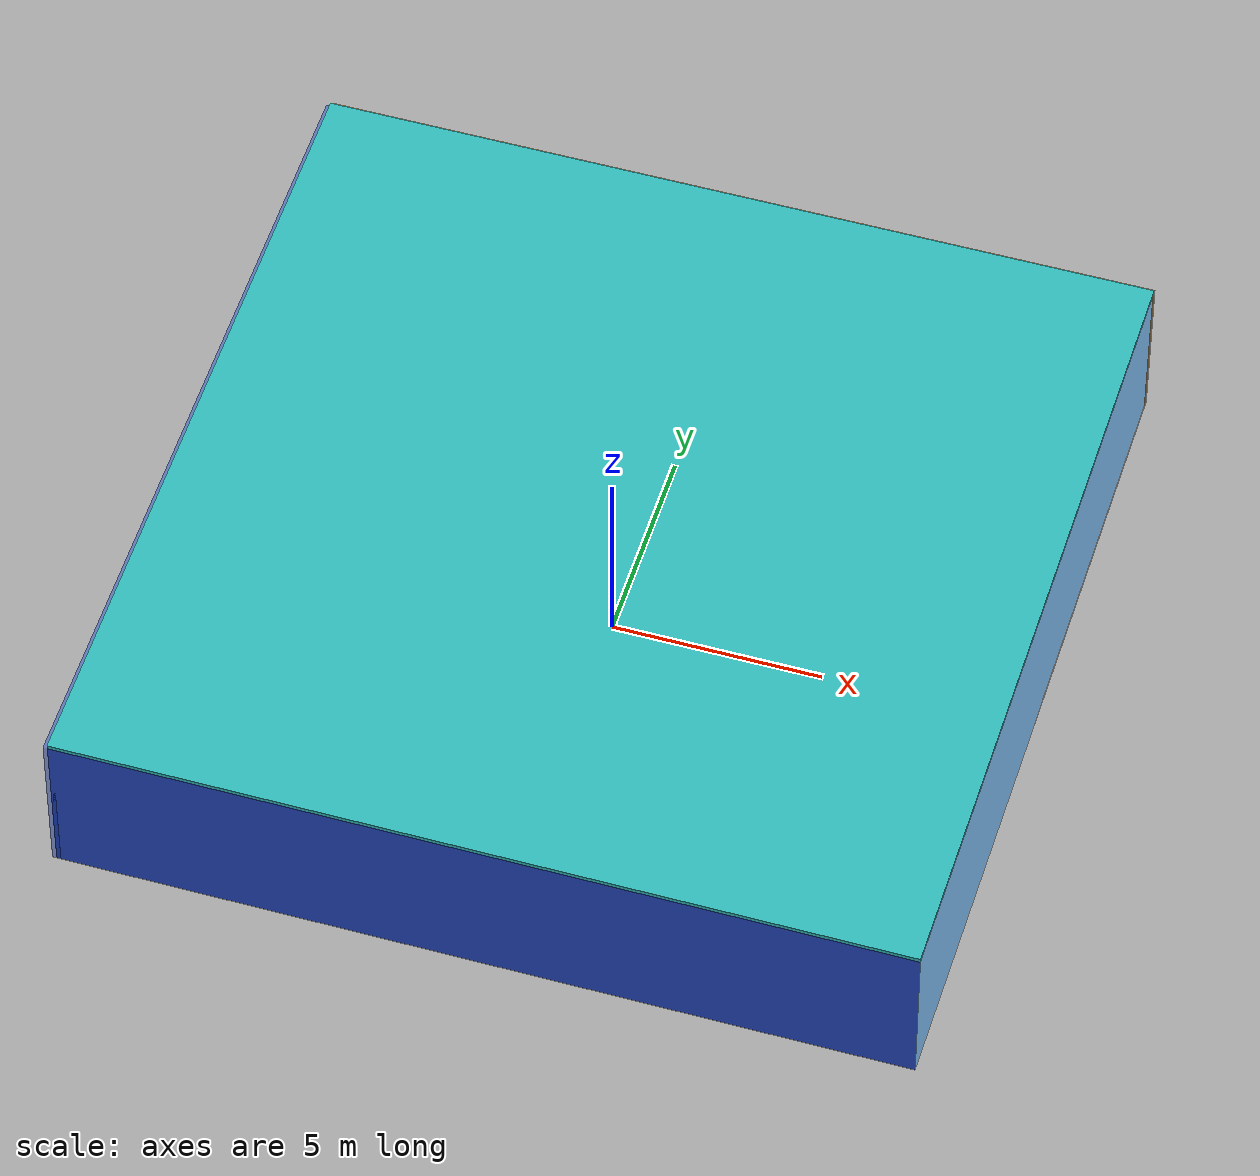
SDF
<sdf version="1.4">
 <world name="default">
  <physics type="ode">
   <max_step_size>0.001</max_step_size>
   <real_time_factor>1</real_time_factor>
   <real_time_update_rate>1000</real_time_update_rate>
   <gravity>0 0 -9.8</gravity>
  </physics>
  <scene><ambient>0.4 0.4 0.4 1</ambient><background>0.7 0.7 0.7 1</background><shadows>1</shadows></scene>
  <model name="Surrounding">
   <static>1</static>
   <link name="Ceiling">
    <collision name="Ceiling_Collision"><geometry><box><size>20 20 0.1</size></box></geometry></collision>
    <visual name="Ceiling_Visual">
     <geometry><box><size>20 20 0.1</size></box></geometry>
     <material>
      <script><uri>file://media/materials/scripts/gazebo.material</uri><name>Gazebo/TurquoiseGlow</name></script>
     </material>
    </visual>
    <pose>0 0 4.05 0 0 0</pose>
   </link>
   <link name="Wall_South">
    <collision name="Wall_South_Collision">
     <geometry><box><size>20 0 4</size></box></geometry>
     <pose>0 0 2 0 -0 0</pose>
    </collision>
    <visual name="Wall_South_Visual">
     <pose>0 0 2 0 -0 0</pose>
     <geometry><box><size>20 0 4</size></box></geometry>
     <material>
      <script><uri>file://media/materials/scripts/gazebo.material</uri><name>Gazebo/Blue</name></script>
     </material>
    </visual>
    <velocity_decay><linear>0</linear><angular>0</angular></velocity_decay>
    <pose>0 -10 0 0 -0 0</pose>
   </link>
   <link name="Wall_East">
    <collision name="Wall_21_Collision">
     <geometry><box><size>20 0 4</size></box></geometry>
     <pose>0 0 2 0 -0 0</pose>
    </collision>
    <visual name="Wall_21_Visual">
     <pose>0 0 2 0 -0 0</pose>
     <geometry><box><size>20 0 4</size></box></geometry>
     <material>
      <script><uri>file://media/materials/scripts/gazebo.material</uri><name>Gazebo/SkyBlue</name></script>
     </material>
    </visual>
    <velocity_decay><linear>0</linear><angular>0</angular></velocity_decay>
    <pose>10 0 0 0 -0 1.5708</pose>
   </link>
   <link name="Wall_North">
    <collision name="Wall_22_Collision">
     <geometry><box><size>20 0.2 4</size></box></geometry>
     <pose>0 0 2 0 -0 0</pose>
    </collision>
    <visual name="Wall_22_Visual">
     <pose>0 0 2 0 -0 0</pose>
     <geometry><box><size>20 0.2 4</size></box></geometry>
     <material>
      <script>
       <uri>file://media/materials/scripts/gazebo.material</uri>
       <name>Gazebo/OrangeTransparent</name>
      </script>
     </material>
    </visual>
    <velocity_decay><linear>0</linear><angular>0</angular></velocity_decay>
    <pose>0 10 0 0 -0 0</pose>
   </link>
   <link name="Wall_West">
    <collision name="Wall_23_Collision">
     <geometry><box><size>20 0.2 4</size></box></geometry>
     <pose>0 0 2 0 -0 0</pose>
    </collision>
    <visual name="Wall_23_Visual">
     <pose>0 0 2 0 -0 0</pose>
     <geometry><box><size>20 0.2 4</size></box></geometry>
     <material>
      <script><uri>file://media/materials/scripts/gazebo.material</uri><name>Gazebo/BlueTransparent</name></script>
     </material>
    </visual>
    <velocity_decay><linear>0</linear><angular>0</angular></velocity_decay>
    <pose>-10 0 0 0 0 -1.5708</pose>
   </link>
   <link name="Ground_link">
    <collision name="collision">
     <pose>0 0 .05 0 -0 0</pose>
     <geometry><box><size>20 20 0.1</size></box></geometry>
    </collision>
    <visual name="visual">
     <pose>0 0 .05 0 -0 0</pose>
     <geometry><box><size>20 20 0.1</size></box></geometry>
     <material>
      <script><uri>file://media/materials/scripts/gazebo.material</uri><name>Gazebo/White</name></script>
     </material>
    </visual>
   </link>
   <static>1</static>
  </model>
  <spherical_coordinates>
   <surface_model>EARTH_WGS84</surface_model>
   <latitude_deg>0</latitude_deg>
   <longitude_deg>0</longitude_deg>
   <elevation>0</elevation>
   <heading_deg>0</heading_deg>
  </spherical_coordinates>
  <light name="lightball_0" type="diffuse">
   <diffuse>0.8 0.8 0.8 1</diffuse>
   <specular>0.2 0.2 0.2 1</specular>
   <attenuation>
    <range>100</range>
    <constant>0.7</constant>
    <linear>0.01</linear>
    <quadratic>0.001</quadratic>
   </attenuation>
   <direction>-0.5 0.1 -0.9</direction>
   <pose>1.63125905879 -2.76063734608 0.900872058603 0 0 0</pose>
  </light>
  <light name="lightball_1" type="diffuse">
   <diffuse>0.8 0.8 0.8 1</diffuse>
   <specular>0.2 0.2 0.2 1</specular>
   <attenuation>
    <range>100</range>
    <constant>0.7</constant>
    <linear>0.01</linear>
    <quadratic>0.001</quadratic>
   </attenuation>
   <direction>-0.5 0.1 -0.9</direction>
   <pose>9.71135197725 -4.35023099986 2.37719605017 0 0 0</pose>
  </light>
  <light name="lightball_2" type="diffuse">
   <diffuse>0.8 0.8 0.8 1</diffuse>
   <specular>0.2 0.2 0.2 1</specular>
   <attenuation>
    <range>100</range>
    <constant>0.7</constant>
    <linear>0.01</linear>
    <quadratic>0.001</quadratic>
   </attenuation>
   <direction>-0.5 0.1 -0.9</direction>
   <pose>6.62854748654 -3.86736837054 3.31577321843 0 0 0</pose>
  </light>
  <light name="lightball_3" type="diffuse">
   <diffuse>0.8 0.8 0.8 1</diffuse>
   <specular>0.2 0.2 0.2 1</specular>
   <attenuation>
    <range>100</range>
    <constant>0.7</constant>
    <linear>0.01</linear>
    <quadratic>0.001</quadratic>
   </attenuation>
   <direction>-0.5 0.1 -0.9</direction>
   <pose>7.96625724525 -5.67131221905 3.5969095033 0 0 0</pose>
  </light>
  <light name="lightball_4" type="diffuse">
   <diffuse>0.8 0.8 0.8 1</diffuse>
   <specular>0.2 0.2 0.2 1</specular>
   <attenuation>
    <range>100</range>
    <constant>0.7</constant>
    <linear>0.01</linear>
    <quadratic>0.001</quadratic>
   </attenuation>
   <direction>-0.5 0.1 -0.9</direction>
   <pose>7.92313653211 8.16463630446 3.3085880852 0 0 0</pose>
  </light>
  <light name="lightball_5" type="diffuse">
   <diffuse>0.8 0.8 0.8 1</diffuse>
   <specular>0.2 0.2 0.2 1</specular>
   <attenuation>
    <range>100</range>
    <constant>0.7</constant>
    <linear>0.01</linear>
    <quadratic>0.001</quadratic>
   </attenuation>
   <direction>-0.5 0.1 -0.9</direction>
   <pose>-5.81972577577 -7.19852351503 1.65893446319 0 0 0</pose>
  </light>
  <include><uri>model://cabinet</uri><pose>-1.93207216629 4.15653760535 0 0 0 2.71893947926</pose></include>
  <include><uri>model://table</uri><pose>0.846720851416 -1.30951060741 0 0 0 0.583775073601</pose></include>
  <include>
   <uri>model://robocup_3Dsim_goal</uri>
   <pose>7.52455395136 -8.17256187207 0 0 0 3.05132583195</pose>
  </include>
  <include>
   <uri>model://construction_cone</uri>
   <pose>8.18088733827 -1.81374966039 0 0 0 2.09429583151</pose>
  </include>
  <include>
   <uri>model://textured_shapes</uri>
   <pose>7.13229341655 2.28959725386 0 0 0 2.87923618994</pose>
  </include>
 </world>
</sdf>

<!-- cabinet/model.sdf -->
<sdf version="1.5">
  <model name="cabinet">
    <static>true</static>
    <link name="cabinet_bottom_plate">
      <inertial>
        <pose>0 0 -1 0 0 0</pose>
        <inertia>
          <ixx>2.050000</ixx>
          <ixy>0</ixy>
          <ixz>0</ixz>
          <iyy>2.050000</iyy>
          <iyz>0</iyz>
          <izz>2.050000</izz>
        </inertia>
        <mass>25.000000</mass>
      </inertial>
      <collision name="cabinet_bottom_plate_geom">
        <pose>0 0 0.010000 0 0 0</pose>
        <geometry>
          <box>
            <size>0.450000 0.450000 0.020000</size>
          </box>
        </geometry>
      </collision>
      <visual name="cabinet_bottom_plate_geom_visual">
        <pose>0 0 0.010000 0 0 0</pose>
        <geometry>
          <box>
            <size>0.450000 0.450000 0.020000</size>
          </box>
        </geometry>
        <material>
          <script>
            <uri>model://media/materials/scripts/gazebo.material</uri>
            <name>Gazebo/Wood</name>
          </script>
        </material>
      </visual>
      <collision name="cabinet_bottom_plate_geom_cabinet_back_plate">
        <pose>0.235000 0 0.510000 0 0 0</pose>
        <geometry>
          <box>
            <size>0.020000 0.450000 1.020000</size>
          </box>
        </geometry>
      </collision>
      <visual name="cabinet_bottom_plate_geom_cabinet_back_plate_visual">
        <pose>0.235000 0 0.510000 0 0 0</pose>
        <geometry>
          <box>
            <size>0.020000 0.450000 1.020000</size>
          </box>
        </geometry>
        <material>
          <script>
            <uri>model://media/materials/scripts/gazebo.material</uri>
            <name>Gazebo/Wood</name>
          </script>
        </material>
      </visual>
      <collision name="cabinet_bottom_plate_geom_cabinet_left_plate">
        <pose>0 0.235000 0.510000 0 0 0</pose>
        <geometry>
          <box>
            <size>0.450000 0.020000 1.020000</size>
          </box>
        </geometry>
      </collision>
      <visual name="cabinet_bottom_plate_geom_cabinet_left_plate_visual">
        <pose>0 0.235000 0.510000 0 0 0</pose>
        <geometry>
          <box>
            <size>0.450000 0.020000 1.020000</size>
          </box>
        </geometry>
        <material>
          <script>
            <uri>model://media/materials/scripts/gazebo.material</uri>
            <name>Gazebo/Wood</name>
          </script>
        </material>
      </visual>
      <collision name="cabinet_bottom_plate_geom_cabinet_middle_plate">
        <pose>0 0 0.510000 0 0 0</pose>
        <geometry>
          <box>
            <size>0.450000 0.450000 0.020000</size>
          </box>
        </geometry>
      </collision>
      <visual name="cabinet_bottom_plate_geom_cabinet_middle_plate_visual">
        <pose>0 0 0.510000 0 0 0</pose>
        <geometry>
          <box>
            <size>0.450000 0.450000 0.020000</size>
          </box>
        </geometry>
        <material>
          <script>
            <uri>model://media/materials/scripts/gazebo.material</uri>
            <name>Gazebo/Wood</name>
          </script>
        </material>
      </visual>
      <collision name="cabinet_bottom_plate_geom_cabinet_right_plate">
        <pose>0 -0.235000 0.510000 0 0 0</pose>
        <geometry>
          <box>
            <size>0.450000 0.020000 1.020000</size>
          </box>
        </geometry>
      </collision>
      <visual name="cabinet_bottom_plate_geom_cabinet_right_plate_visual">
        <pose>0 -0.235000 0.510000 0 0 0</pose>
        <geometry>
          <box>
            <size>0.450000 0.020000 1.020000</size>
          </box>
        </geometry>
        <material>
          <script>
            <uri>model://media/materials/scripts/gazebo.material</uri>
            <name>Gazebo/Wood</name>
          </script>
        </material>
      </visual>
      <collision name="cabinet_bottom_plate_geom_cabinet_top_plate">
        <pose>0 0 1.010000 0 0 0</pose>
        <geometry>
          <box>
            <size>0.450000 0.450000 0.020000</size>
          </box>
        </geometry>
      </collision>
      <visual name="cabinet_bottom_plate_geom_cabinet_top_plate_visual">
        <pose>0 0 1.010000 0 0 0</pose>
        <geometry>
          <box>
            <size>0.450000 0.450000 0.020000</size>
          </box>
        </geometry>
        <material>
          <script>
            <uri>model://media/materials/scripts/gazebo.material</uri>
            <name>Gazebo/Wood</name>
          </script>
        </material>
      </visual>
    </link>
  </model>
</sdf>

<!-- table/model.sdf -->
<sdf version="1.5">
  <model name="table">
    <static>true</static>
    <link name="link">
      <collision name="surface">
        <pose>0 0 1.0 0 0 0</pose>
        <geometry>
          <box>
            <size>1.5 0.8 0.03</size>
          </box>
        </geometry>
        <surface>
          <friction>
            <ode>
              <mu>0.6</mu>
              <mu2>0.6</mu2>
            </ode>
          </friction>
        </surface>
      </collision>
      <visual name="visual1">
        <pose>0 0 1.0 0 0 0</pose>
        <geometry>
          <box>
            <size>1.5 0.8 0.03</size>
          </box>
        </geometry>
        <material>
          <script>
            <uri>model://media/materials/scripts/gazebo.material</uri>
            <name>Gazebo/Wood</name>
          </script>
        </material>
      </visual>
      <collision name="front_left_leg">
        <pose>0.68 0.38 0.5 0 0 0</pose>
        <geometry>
          <cylinder>
            <radius>0.02</radius>
            <length>1.0</length>
          </cylinder>
        </geometry>
      </collision>
      <visual name="front_left_leg">
        <pose>0.68 0.38 0.5 0 0 0</pose>
        <geometry>
          <cylinder>
            <radius>0.02</radius>
            <length>1.0</length>
          </cylinder>
        </geometry>
        <material>
          <script>
            <uri>model://media/materials/scripts/gazebo.material</uri>
            <name>Gazebo/Grey</name>
          </script>
        </material>
      </visual>
      <collision name="front_right_leg">
        <pose>0.68 -0.38 0.5 0 0 0</pose>
        <geometry>
          <cylinder>
            <radius>0.02</radius>
            <length>1.0</length>
          </cylinder>
        </geometry>
      </collision>
      <visual name="front_right_leg">
        <pose>0.68 -0.38 0.5 0 0 0</pose>
        <geometry>
          <cylinder>
            <radius>0.02</radius>
            <length>1.0</length>
          </cylinder>
        </geometry>
        <material>
          <script>
            <uri>model://media/materials/scripts/gazebo.material</uri>
            <name>Gazebo/Grey</name>
          </script>
        </material>
      </visual>
      <collision name="back_right_leg">
        <pose>-0.68 -0.38 0.5 0 0 0</pose>
        <geometry>
          <cylinder>
            <radius>0.02</radius>
            <length>1.0</length>
          </cylinder>
        </geometry>
      </collision>
      <visual name="back_right_leg">
        <pose>-0.68 -0.38 0.5 0 0 0</pose>
        <geometry>
          <cylinder>
            <radius>0.02</radius>
            <length>1.0</length>
          </cylinder>
        </geometry>
        <material>
          <script>
            <uri>model://media/materials/scripts/gazebo.material</uri>
            <name>Gazebo/Grey</name>
          </script>
        </material>
      </visual>
      <collision name="back_left_leg">
        <pose>-0.68 0.38 0.5 0 0 0</pose>
        <geometry>
          <cylinder>
            <radius>0.02</radius>
            <length>1.0</length>
          </cylinder>
        </geometry>
      </collision>
      <visual name="back_left_leg">
        <pose>-0.68 0.38 0.5 0 0 0</pose>
        <geometry>
          <cylinder>
            <radius>0.02</radius>
            <length>1.0</length>
          </cylinder>
        </geometry>
        <material>
          <script>
            <uri>model://media/materials/scripts/gazebo.material</uri>
            <name>Gazebo/Grey</name>
          </script>
        </material>
      </visual>
    </link>
  </model>
</sdf>

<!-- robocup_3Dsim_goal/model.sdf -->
<sdf version="1.5">
  <model name="robocup_3d_goal">
    <static>true</static>
    <link name="left_post">
      <pose>0 1.05 0.45 0 0 0</pose>
      <collision name="collision">
        <geometry>
          <cylinder>
            <radius>0.05</radius>
            <length>0.9</length>
          </cylinder>
        </geometry>
      </collision>
      <visual name="visual">
        <geometry>
          <cylinder>
            <radius>0.05</radius>
            <length>0.9</length>
          </cylinder>
        </geometry>
        <material>
          <script>
            <uri>file://media/materials/scripts/gazebo.material</uri>
            <name>Gazebo/ZincYellow</name>
          </script>
        </material>
      </visual>
    </link>
    <link name="left_support_horiz_lower">
      <pose>0.30 1.05 0.01 0 0 0</pose>
      <collision name="collision">
        <geometry>
          <box>
            <size>0.50 0.02 0.02</size>
          </box>
        </geometry>
      </collision>
      <visual name="visual">
        <geometry>
          <box>
            <size>0.50 0.02 0.02</size>
          </box>
        </geometry>
        <material>
          <script>
            <uri>file://media/materials/scripts/gazebo.material</uri>
            <name>Gazebo/White</name>
          </script>
        </material>
      </visual>
    </link>
    <link name="left_support_horiz_upper">
      <pose>0.30 1.05 0.79 0 0 0</pose>
      <collision name="collision">
        <geometry>
          <box>
            <size>0.50 0.02 0.02</size>
          </box>
        </geometry>
      </collision>
      <visual name="visual">
        <geometry>
          <box>
            <size>0.50 0.02 0.02</size>
          </box>
        </geometry>
        <material>
          <script>
            <uri>file://media/materials/scripts/gazebo.material</uri>
            <name>Gazebo/White</name>
          </script>
        </material>
      </visual>
    </link>
    <link name="left_support_vertical">
      <pose>0.56 1.05 0.4 0 1.5708 0</pose>
      <collision name="collision">
        <geometry>
          <box>
            <size>0.80 0.02 0.02</size>
          </box>
        </geometry>
      </collision>
      <visual name="visual">
        <geometry>
          <box>
            <size>0.80 0.02 0.02</size>
          </box>
        </geometry>
        <material>
          <script>
            <uri>file://media/materials/scripts/gazebo.material</uri>
            <name>Gazebo/White</name>
          </script>
        </material>
      </visual>
    </link>
    <link name="right_support_horiz_lower">
      <pose>0.30 -1.05 0.01 0 0 0</pose>
      <collision name="collision">
        <geometry>
          <box>
            <size>0.50 0.02 0.02</size>
          </box>
        </geometry>
      </collision>
      <visual name="visual">
        <geometry>
          <box>
            <size>0.50 0.02 0.02</size>
          </box>
        </geometry>
        <material>
          <script>
            <uri>file://media/materials/scripts/gazebo.material</uri>
            <name>Gazebo/White</name>
          </script>
        </material>
      </visual>
    </link>
    <link name="right_support_horiz_upper">
      <pose>0.30 -1.05 0.79 0 0 0</pose>
      <collision name="collision">
        <geometry>
          <box>
            <size>0.50 0.02 0.02</size>
          </box>
        </geometry>
      </collision>
      <visual name="visual">
        <geometry>
          <box>
            <size>0.50 0.02 0.02</size>
          </box>
        </geometry>
        <material>
          <script>
            <uri>file://media/materials/scripts/gazebo.material</uri>
            <name>Gazebo/White</name>
          </script>
        </material>
      </visual>
    </link>
    <link name="right_support_vertical">
      <pose>0.56 -1.05 0.4 0 1.5708 0</pose>
      <collision name="collision">
        <geometry>
          <box>
            <size>0.80 0.02 0.02</size>
          </box>
        </geometry>
      </collision>
      <visual name="visual">
        <geometry>
          <box>
            <size>0.80 0.02 0.02</size>
          </box>
        </geometry>
        <material>
          <script>
            <uri>file://media/materials/scripts/gazebo.material</uri>
            <name>Gazebo/White</name>
          </script>
        </material>
      </visual>
    </link>
    <link name="center_support_horiz_lower">
      <pose>0.56 0 0.01 0 1.5708 0</pose>
      <collision name="collision">
        <geometry>
          <box>
            <size>0.02 2.08 0.02</size>
          </box>
        </geometry>
      </collision>
      <visual name="visual">
        <geometry>
          <box>
            <size>0.02 2.08 0.02</size>
          </box>
        </geometry>
        <material>
          <script>
            <uri>file://media/materials/scripts/gazebo.material</uri>
            <name>Gazebo/White</name>
          </script>
        </material>
      </visual>
    </link>
    <link name="center_support_horiz_upper">
      <pose>0.56 0 0.79 0 1.5708 0</pose>
      <collision name="collision">
        <geometry>
          <box>
            <size>0.02 2.08 0.02</size>
          </box>
        </geometry>
      </collision>
      <visual name="visual">
        <geometry>
          <box>
            <size>0.02 2.08 0.02</size>
          </box>
        </geometry>
        <material>
          <script>
            <uri>file://media/materials/scripts/gazebo.material</uri>
            <name>Gazebo/White</name>
          </script>
        </material>
      </visual>
    </link>
    <link name="right_post">
      <pose>0 -1.05 0.45 0 0 0</pose>
      <collision name="collision">
        <geometry>
          <cylinder>
            <radius>0.05</radius>
            <length>0.9</length>
          </cylinder>
        </geometry>
      </collision>
      <visual name="visual">
        <geometry>
          <cylinder>
            <radius>0.05</radius>
            <length>0.9</length>
          </cylinder>
        </geometry>
        <material>
          <script>
            <uri>file://media/materials/scripts/gazebo.material</uri>
            <name>Gazebo/ZincYellow</name>
          </script>
        </material>
      </visual>
    </link>
    <link name="crossbar">
      <pose>0 0 0.85 1.57 1.57 0</pose>
      <collision name="collision">
        <geometry>
          <cylinder>
            <radius>0.05</radius>
            <length>2.0</length>
          </cylinder>
        </geometry>
      </collision>
      <visual name="visual">
        <geometry>
          <cylinder>
            <radius>0.05</radius>
            <length>2.0</length>
          </cylinder>
        </geometry>
        <material>
          <script>
            <uri>file://media/materials/scripts/gazebo.material</uri>
            <name>Gazebo/ZincYellow</name>
          </script>
        </material>
      </visual>
    </link>
    <link name="center_net">
      <pose>0.56 0 0.40 0 0 0</pose>
      <collision name="collision">
        <geometry>
          <box>
            <size>0.01 2.1 0.80</size>
          </box>
        </geometry>
      </collision>
      <visual name="visual">
        <geometry>
          <box>
            <size>0.01 2.1 0.80</size>
          </box>
        </geometry>
        <material>
          <script>
            <uri>model://../model_source/models/robocup09_spl_field/materials/scripts/</uri>
            <uri>model://../model_source/models/robocup09_spl_field/materials/textures/</uri>
            <name>RoboCup/Net</name>
          </script>
        </material>
      </visual>
    </link>
    <link name="left_net">
      <pose>0.30 1.05 0.40 0 0 0</pose>
      <collision name="collision">
        <geometry>
          <box>
            <size>0.50 0.01 0.76</size>
          </box>
        </geometry>
      </collision>
      <visual name="visual">
        <geometry>
          <box>
            <size>0.50 0.01 0.76</size>
          </box>
        </geometry>
        <material>
          <script>
            <uri>model://../model_source/models/robocup09_spl_field/materials/scripts/</uri>
            <uri>model://../model_source/models/robocup09_spl_field/materials/textures/</uri>
            <name>RoboCup/Net</name>
          </script>
        </material>
      </visual>
    </link>
    <link name="right_net">
      <pose>0.30 -1.05 0.40 0 0 0</pose>
      <collision name="collision">
        <geometry>
          <box>
            <size>0.50 0.01 0.76</size>
          </box>
        </geometry>
      </collision>
      <visual name="visual">
        <geometry>
          <box>
            <size>0.50 0.01 0.76</size>
          </box>
        </geometry>
        <material>
          <script>
            <uri>model://../model_source/models/robocup09_spl_field/materials/scripts/</uri>
            <uri>model://../model_source/models/robocup09_spl_field/materials/textures/</uri>
            <name>RoboCup/Net</name>
          </script>
        </material>
      </visual>
    </link>
  </model>
</sdf>

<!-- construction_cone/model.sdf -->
<sdf version="1.5">
  <model name="Construction Cone">
    <link name="link">
      <collision name="collision">
        <geometry>
          <mesh>
            <scale>10 10 10</scale>
            <uri>file://isr-testbed/construction_cone/meshes/construction_cone.dae</uri>
          </mesh>
        </geometry>
      </collision>
      <visual name="visual">
        <geometry>
          <mesh>
            <scale>10 10 10</scale>
            <uri>file://isr-testbed/construction_cone/meshes/construction_cone.dae</uri>
          </mesh>
        </geometry>
      </visual>
    </link>
  </model>
</sdf>

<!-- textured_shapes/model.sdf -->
<sdf version="1.6">
  <model name="textured_shapes">
    <pose>0 0 0.5 0 0 0</pose>
    <link name="box">
      <pose>0 -1.5 0 0 0 0</pose>
      <collision name="collision">
        <geometry>
          <box>
            <size>1 1 1</size>
          </box>
        </geometry>
      </collision>
      <visual name="visual">
        <geometry>
          <box>
            <size>1 1 1</size>
          </box>
        </geometry>
        <material>
          <script>
            <uri>model://../model_source/models/textured_shapes/materials/scripts</uri>
            <uri>model://../model_source/models/textured_shapes/materials/textures</uri>
            <name>TexturedShape/Squares</name>
          </script>
        </material>
      </visual>
    </link>
    <link name="sphere">
      <collision name="collision">
        <geometry>
          <sphere>
            <radius>0.5</radius>
          </sphere>
        </geometry>
      </collision>
      <visual name="visual">
        <geometry>
          <sphere>
            <radius>0.5</radius>
          </sphere>
        </geometry>
        <material>
          <script>
            <uri>model://../model_source/models/textured_shapes/materials/scripts</uri>
            <uri>model://../model_source/models/textured_shapes/materials/textures</uri>
            <name>TexturedShape/Squares</name>
          </script>
        </material>
      </visual>
    </link>
    <link name="cylinder">
      <pose>0 1.5 0 0 0 0</pose>
      <collision name="collision">
        <geometry>
          <cylinder>
            <radius>0.5</radius>
            <length>1</length>
          </cylinder>
        </geometry>
      </collision>
      <visual name="visual">
        <geometry>
          <cylinder>
            <radius>0.5</radius>
            <length>1</length>
          </cylinder>
        </geometry>
        <material>
          <script>
            <uri>model://../model_source/models/textured_shapes/materials/scripts</uri>
            <uri>model://../model_source/models/textured_shapes/materials/textures</uri>
            <name>TexturedShape/Squares</name>
          </script>
        </material>
      </visual>
    </link>
  </model>
</sdf>
